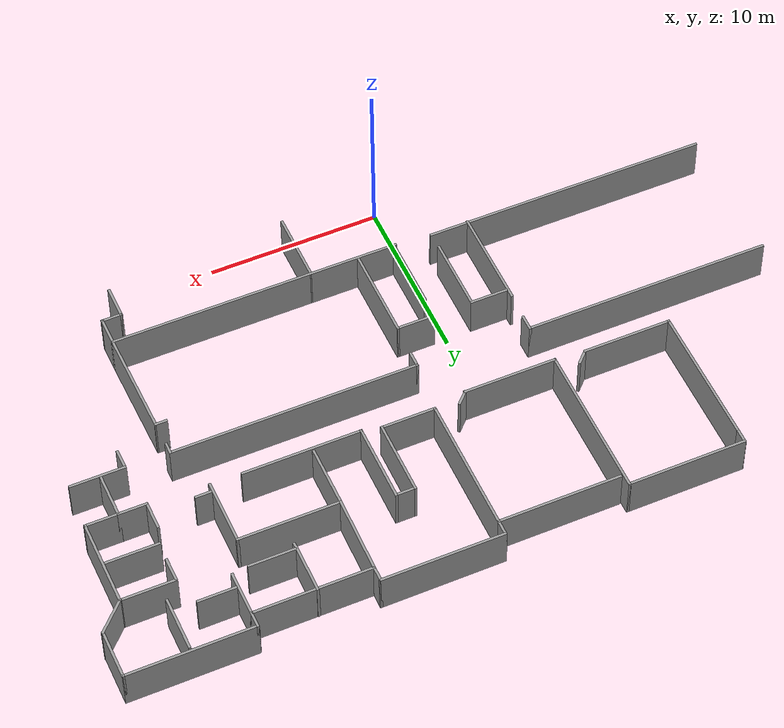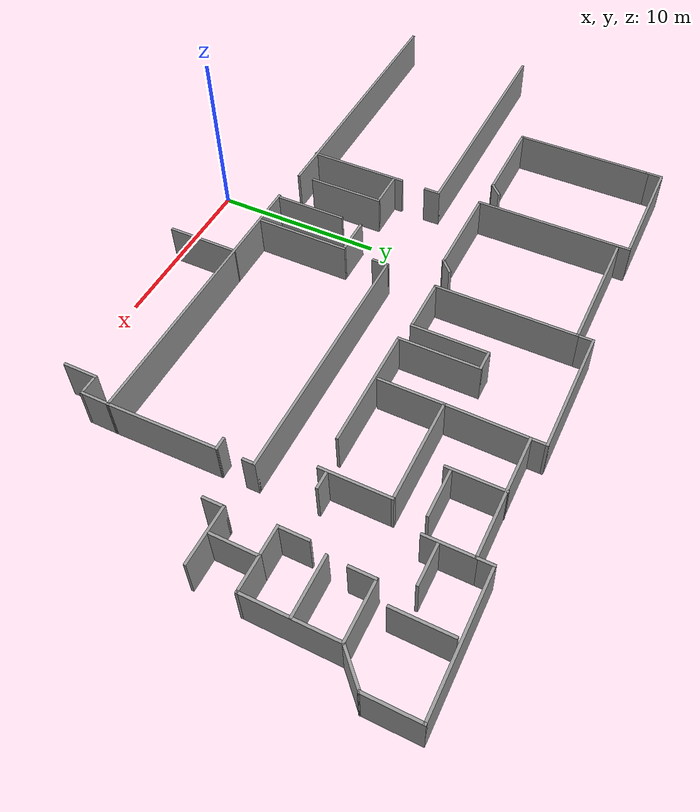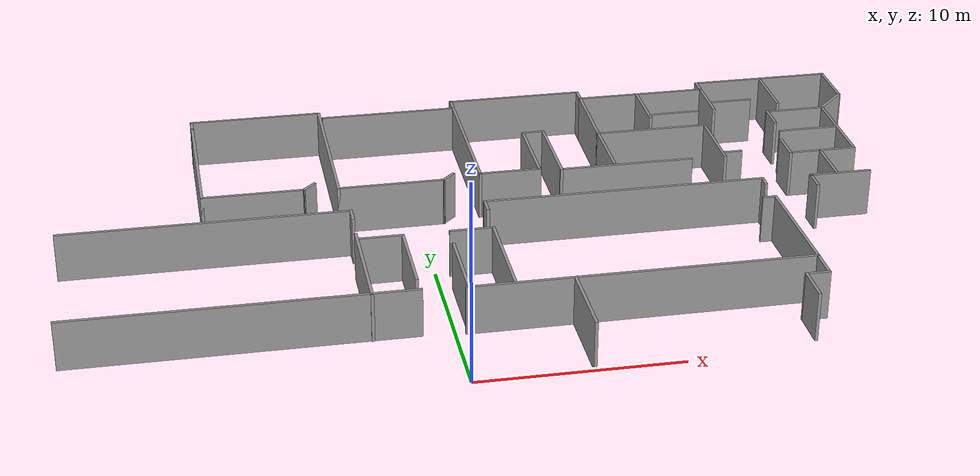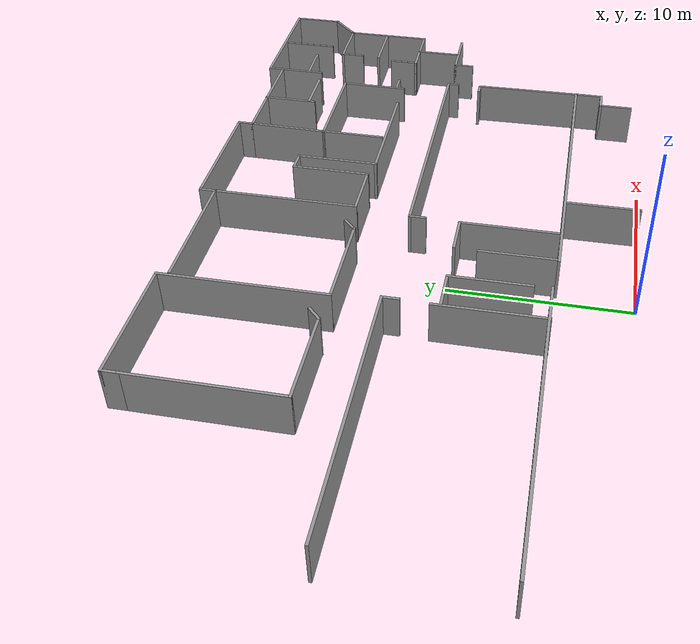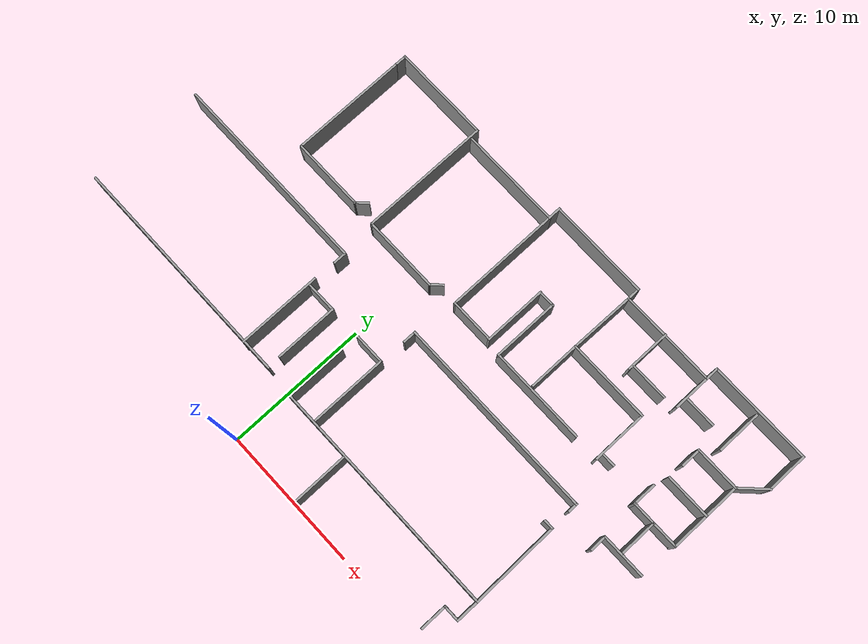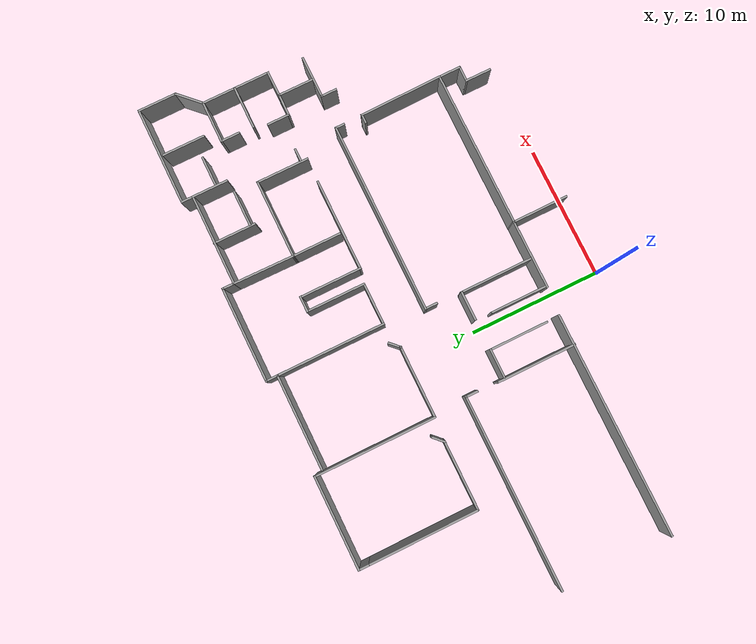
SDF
<sdf version="1.6">
 <model name="Untitled">
  <pose>-0.441057 -0.068194 0 0 -0 0</pose>
  <link name="Wall_342">
   <collision name="Wall_342_Collision">
    <geometry><box><size>1.25 0.15 2.5</size></box></geometry>
    <pose>0 0 1.25 0 -0 0</pose>
   </collision>
   <visual name="Wall_342_Visual">
    <pose>0 0 1.25 0 -0 0</pose>
    <geometry><box><size>1.25 0.15 2.5</size></box></geometry>
    <material>
     <script><uri>file://media/materials/scripts/gazebo.material</uri><name>Gazebo/Grey</name></script>
     <ambient>1 1 1 1</ambient>
    </material>
    <meta><layer>0</layer></meta>
   </visual>
   <pose>20.2503 11.9085 0 0 -0 1.5708</pose>
  </link>
  <link name="Wall_343">
   <collision name="Wall_343_Collision">
    <geometry><box><size>3.25 0.15 2.5</size></box></geometry>
    <pose>0 0 1.25 0 -0 0</pose>
   </collision>
   <visual name="Wall_343_Visual">
    <pose>0 0 1.25 0 -0 0</pose>
    <geometry><box><size>3.25 0.15 2.5</size></box></geometry>
    <material>
     <script><uri>file://media/materials/scripts/gazebo.material</uri><name>Gazebo/Grey</name></script>
     <ambient>1 1 1 1</ambient>
    </material>
    <meta><layer>0</layer></meta>
   </visual>
   <pose>21.8003 12.4585 0 0 -0 0</pose>
  </link>
  <link name="Wall_420">
   <collision name="Wall_420_Collision">
    <geometry><box><size>8.25 0.15 2.5</size></box></geometry>
    <pose>0 0 1.25 0 -0 0</pose>
   </collision>
   <visual name="Wall_420_Visual">
    <pose>0 0 1.25 0 -0 0</pose>
    <geometry><box><size>8.25 0.15 2.5</size></box></geometry>
    <material>
     <script><uri>file://media/materials/scripts/gazebo.material</uri><name>Gazebo/Grey</name></script>
     <ambient>1 1 1 1</ambient>
    </material>
    <meta><layer>0</layer></meta>
   </visual>
   <pose>-10.4728 19.4766 0 0 -0 -1.5708</pose>
  </link>
  <link name="Wall_425">
   <collision name="Wall_425_Collision">
    <geometry><box><size>1 0.15 2.5</size></box></geometry>
    <pose>0 0 1.25 0 -0 0</pose>
   </collision>
   <visual name="Wall_425_Visual">
    <pose>0 0 1.25 0 -0 0</pose>
    <geometry><box><size>1 0.15 2.5</size></box></geometry>
    <material>
     <script><uri>file://media/materials/scripts/gazebo.material</uri><name>Gazebo/Grey</name></script>
     <ambient>1 1 1 1</ambient>
    </material>
    <meta><layer>0</layer></meta>
   </visual>
   <pose>-10.4728 23.9516 0 0 -0 1.5708</pose>
  </link>
  <link name="Wall_426">
   <collision name="Wall_426_Collision">
    <geometry><box><size>7 0.15 2.5</size></box></geometry>
    <pose>0 0 1.25 0 -0 0</pose>
   </collision>
   <visual name="Wall_426_Visual">
    <pose>0 0 1.25 0 -0 0</pose>
    <geometry><box><size>7 0.15 2.5</size></box></geometry>
    <material>
     <script><uri>file://media/materials/scripts/gazebo.material</uri><name>Gazebo/Grey</name></script>
     <ambient>1 1 1 1</ambient>
    </material>
    <meta><layer>0</layer></meta>
   </visual>
   <pose>-7.0478 24.3766 0 0 -0 0</pose>
  </link>
  <link name="Wall_427">
   <collision name="Wall_427_Collision">
    <geometry><box><size>9.25 0.15 2.5</size></box></geometry>
    <pose>0 0 1.25 0 -0 0</pose>
   </collision>
   <visual name="Wall_427_Visual">
    <pose>0 0 1.25 0 -0 0</pose>
    <geometry><box><size>9.25 0.15 2.5</size></box></geometry>
    <material>
     <script><uri>file://media/materials/scripts/gazebo.material</uri><name>Gazebo/Grey</name></script>
     <ambient>1 1 1 1</ambient>
    </material>
    <meta><layer>0</layer></meta>
   </visual>
   <pose>-3.6228 19.8266 0 0 -0 -1.5708</pose>
  </link>
  <link name="Wall_430">
   <collision name="Wall_430_Collision">
    <geometry><box><size>5.25 0.15 2.5</size></box></geometry>
    <pose>0 0 1.25 0 -0 0</pose>
   </collision>
   <visual name="Wall_430_Visual">
    <pose>0 0 1.25 0 -0 0</pose>
    <geometry><box><size>5.25 0.15 2.5</size></box></geometry>
    <material>
     <script><uri>file://media/materials/scripts/gazebo.material</uri><name>Gazebo/Grey</name></script>
     <ambient>1 1 1 1</ambient>
    </material>
    <meta><layer>0</layer></meta>
   </visual>
   <pose>-7.9228 15.4266 0 0 -0 0</pose>
  </link>
  <link name="Wall_431">
   <collision name="Wall_431_Collision">
    <geometry><box><size>1 0.15 2.5</size></box></geometry>
    <pose>0 0 1.25 0 -0 0</pose>
   </collision>
   <visual name="Wall_431_Visual">
    <pose>0 0 1.25 0 -0 0</pose>
    <geometry><box><size>1 0.15 2.5</size></box></geometry>
    <material>
     <script><uri>file://media/materials/scripts/gazebo.material</uri><name>Gazebo/Grey</name></script>
     <ambient>1 1 1 1</ambient>
    </material>
    <meta><layer>0</layer></meta>
   </visual>
   <pose>-5.07228 15.7271 0 0 -0 0.785398</pose>
  </link>
  <link name="Wall_433">
   <collision name="Wall_433_Collision">
    <geometry><box><size>7.25 0.15 2.5</size></box></geometry>
    <pose>0 0 1.25 0 -0 0</pose>
   </collision>
   <visual name="Wall_433_Visual">
    <pose>0 0 1.25 0 -0 0</pose>
    <geometry><box><size>7.25 0.15 2.5</size></box></geometry>
    <material>
     <script><uri>file://media/materials/scripts/gazebo.material</uri><name>Gazebo/Grey</name></script>
     <ambient>1 1 1 1</ambient>
    </material>
    <meta><layer>0</layer></meta>
   </visual>
   <pose>0.133723 23.7353 0 0 -0 0</pose>
  </link>
  <link name="Wall_434">
   <collision name="Wall_434_Collision">
    <geometry><box><size>8.25 0.15 2.5</size></box></geometry>
    <pose>0 0 1.25 0 -0 0</pose>
   </collision>
   <visual name="Wall_434_Visual">
    <pose>0 0 1.25 0 -0 0</pose>
    <geometry><box><size>8.25 0.15 2.5</size></box></geometry>
    <material>
     <script><uri>file://media/materials/scripts/gazebo.material</uri><name>Gazebo/Grey</name></script>
     <ambient>1 1 1 1</ambient>
    </material>
    <meta><layer>0</layer></meta>
   </visual>
   <pose>3.68372 19.6853 0 0 -0 -1.5708</pose>
  </link>
  <link name="Wall_436">
   <collision name="Wall_436_Collision">
    <geometry><box><size>5.5 0.15 2.5</size></box></geometry>
    <pose>0 0 1.25 0 -0 0</pose>
   </collision>
   <visual name="Wall_436_Visual">
    <pose>0 0 1.25 0 -0 0</pose>
    <geometry><box><size>5.5 0.15 2.5</size></box></geometry>
    <material>
     <script><uri>file://media/materials/scripts/gazebo.material</uri><name>Gazebo/Grey</name></script>
     <ambient>1 1 1 1</ambient>
    </material>
    <meta><layer>0</layer></meta>
   </visual>
   <pose>-0.947799 15.2766 0 0 -0 0</pose>
  </link>
  <link name="Wall_437">
   <collision name="Wall_437_Collision">
    <geometry><box><size>1 0.15 2.5</size></box></geometry>
    <pose>0 0 1.25 0 -0 0</pose>
   </collision>
   <visual name="Wall_437_Visual">
    <pose>0 0 1.25 0 -0 0</pose>
    <geometry><box><size>1 0.15 2.5</size></box></geometry>
    <material>
     <script><uri>file://media/materials/scripts/gazebo.material</uri><name>Gazebo/Grey</name></script>
     <ambient>1 1 1 1</ambient>
    </material>
    <meta><layer>0</layer></meta>
   </visual>
   <pose>2.02772 15.5771 0 0 -0 0.785398</pose>
  </link>
  <link name="Wall_441">
   <collision name="Wall_441_Collision">
    <geometry><box><size>1 0.15 2.5</size></box></geometry>
    <pose>0 0 1.25 0 -0 0</pose>
   </collision>
   <visual name="Wall_441_Visual">
    <pose>0 0 1.25 0 -0 0</pose>
    <geometry><box><size>1 0.15 2.5</size></box></geometry>
    <material>
     <script><uri>file://media/materials/scripts/gazebo.material</uri><name>Gazebo/Grey</name></script>
     <ambient>1 1 1 1</ambient>
    </material>
    <meta><layer>0</layer></meta>
   </visual>
   <pose>3.68372 24.1603 0 0 -0 1.5708</pose>
  </link>
  <link name="Wall_442">
   <collision name="Wall_442_Collision">
    <geometry><box><size>7.25 0.15 2.5</size></box></geometry>
    <pose>0 0 1.25 0 -0 0</pose>
   </collision>
   <visual name="Wall_442_Visual">
    <pose>0 0 1.25 0 -0 0</pose>
    <geometry><box><size>7.25 0.15 2.5</size></box></geometry>
    <material>
     <script><uri>file://media/materials/scripts/gazebo.material</uri><name>Gazebo/Grey</name></script>
     <ambient>1 1 1 1</ambient>
    </material>
    <meta><layer>0</layer></meta>
   </visual>
   <pose>7.23372 24.5853 0 0 -0 0</pose>
  </link>
  <link name="Wall_443">
   <collision name="Wall_443_Collision">
    <geometry><box><size>1 0.15 2.5</size></box></geometry>
    <pose>0 0 1.25 0 -0 0</pose>
   </collision>
   <visual name="Wall_443_Visual">
    <pose>0 0 1.25 0 -0 0</pose>
    <geometry><box><size>1 0.15 2.5</size></box></geometry>
    <material>
     <script><uri>file://media/materials/scripts/gazebo.material</uri><name>Gazebo/Grey</name></script>
     <ambient>1 1 1 1</ambient>
    </material>
    <meta><layer>0</layer></meta>
   </visual>
   <pose>10.7837 24.1603 0 0 -0 -1.5708</pose>
  </link>
  <link name="Wall_445">
   <collision name="Wall_445_Collision">
    <geometry><box><size>3.25 0.15 2.5</size></box></geometry>
    <pose>0 0 1.25 0 -0 0</pose>
   </collision>
   <visual name="Wall_445_Visual">
    <pose>0 0 1.25 0 -0 0</pose>
    <geometry><box><size>3.25 0.15 2.5</size></box></geometry>
    <material>
     <script><uri>file://media/materials/scripts/gazebo.material</uri><name>Gazebo/Grey</name></script>
     <ambient>1 1 1 1</ambient>
    </material>
    <meta><layer>0</layer></meta>
   </visual>
   <pose>5.23372 15.6353 0 0 -0 0</pose>
  </link>
  <link name="Wall_446">
   <collision name="Wall_446_Collision">
    <geometry><box><size>4.5 0.15 2.5</size></box></geometry>
    <pose>0 0 1.25 0 -0 0</pose>
   </collision>
   <visual name="Wall_446_Visual">
    <pose>0 0 1.25 0 -0 0</pose>
    <geometry><box><size>4.5 0.15 2.5</size></box></geometry>
    <material>
     <script><uri>file://media/materials/scripts/gazebo.material</uri><name>Gazebo/Grey</name></script>
     <ambient>1 1 1 1</ambient>
    </material>
    <meta><layer>0</layer></meta>
   </visual>
   <pose>6.78372 17.8103 0 0 -0 1.5708</pose>
  </link>
  <link name="Wall_447">
   <collision name="Wall_447_Collision">
    <geometry><box><size>1.25 0.15 2.5</size></box></geometry>
    <pose>0 0 1.25 0 -0 0</pose>
   </collision>
   <visual name="Wall_447_Visual">
    <pose>0 0 1.25 0 -0 0</pose>
    <geometry><box><size>1.25 0.15 2.5</size></box></geometry>
    <material>
     <script><uri>file://media/materials/scripts/gazebo.material</uri><name>Gazebo/Grey</name></script>
     <ambient>1 1 1 1</ambient>
    </material>
    <meta><layer>0</layer></meta>
   </visual>
   <pose>7.33372 19.9853 0 0 -0 0</pose>
  </link>
  <link name="Wall_448">
   <collision name="Wall_448_Collision">
    <geometry><box><size>4.75 0.15 2.5</size></box></geometry>
    <pose>0 0 1.25 0 -0 0</pose>
   </collision>
   <visual name="Wall_448_Visual">
    <pose>0 0 1.25 0 -0 0</pose>
    <geometry><box><size>4.75 0.15 2.5</size></box></geometry>
    <material>
     <script><uri>file://media/materials/scripts/gazebo.material</uri><name>Gazebo/Grey</name></script>
     <ambient>1 1 1 1</ambient>
    </material>
    <meta><layer>0</layer></meta>
   </visual>
   <pose>7.88372 17.6853 0 0 -0 -1.5708</pose>
  </link>
  <link name="Wall_449">
   <collision name="Wall_449_Collision">
    <geometry><box><size>7 0.15 2.5</size></box></geometry>
    <pose>0 0 1.25 0 -0 0</pose>
   </collision>
   <visual name="Wall_449_Visual">
    <pose>0 0 1.25 0 -0 0</pose>
    <geometry><box><size>7 0.15 2.5</size></box></geometry>
    <material>
     <script><uri>file://media/materials/scripts/gazebo.material</uri><name>Gazebo/Grey</name></script>
     <ambient>1 1 1 1</ambient>
    </material>
    <meta><layer>0</layer></meta>
   </visual>
   <pose>11.3087 15.3853 0 0 -0 0</pose>
  </link>
  <link name="Wall_451">
   <collision name="Wall_451_Collision">
    <geometry><box><size>7 0.15 2.5</size></box></geometry>
    <pose>0 0 1.25 0 -0 0</pose>
   </collision>
   <visual name="Wall_451_Visual">
    <pose>0 0 1.25 0 -0 0</pose>
    <geometry><box><size>7 0.15 2.5</size></box></geometry>
    <material>
     <script><uri>file://media/materials/scripts/gazebo.material</uri><name>Gazebo/Grey</name></script>
     <ambient>1 1 1 1</ambient>
    </material>
    <meta><layer>0</layer></meta>
   </visual>
   <pose>14.2087 23.7353 0 0 -0 0</pose>
  </link>
  <link name="Wall_452">
   <collision name="Wall_452_Collision">
    <geometry><box><size>1 0.15 2.5</size></box></geometry>
    <pose>0 0 1.25 0 -0 0</pose>
   </collision>
   <visual name="Wall_452_Visual">
    <pose>0 0 1.25 0 -0 0</pose>
    <geometry><box><size>1 0.15 2.5</size></box></geometry>
    <material>
     <script><uri>file://media/materials/scripts/gazebo.material</uri><name>Gazebo/Grey</name></script>
     <ambient>1 1 1 1</ambient>
    </material>
    <meta><layer>0</layer></meta>
   </visual>
   <pose>17.6337 24.1603 0 0 -0 1.5708</pose>
  </link>
  <link name="Wall_453">
   <collision name="Wall_453_Collision">
    <geometry><box><size>7.5 0.15 2.5</size></box></geometry>
    <pose>0 0 1.25 0 -0 0</pose>
   </collision>
   <visual name="Wall_453_Visual">
    <pose>0 0 1.25 0 -0 0</pose>
    <geometry><box><size>7.5 0.15 2.5</size></box></geometry>
    <material>
     <script><uri>file://media/materials/scripts/gazebo.material</uri><name>Gazebo/Grey</name></script>
     <ambient>1 1 1 1</ambient>
    </material>
    <meta><layer>0</layer></meta>
   </visual>
   <pose>21.3087 24.5853 0 0 -0 0</pose>
  </link>
  <link name="Wall_454">
   <collision name="Wall_454_Collision">
    <geometry><box><size>3 0.15 2.5</size></box></geometry>
    <pose>0 0 1.25 0 -0 0</pose>
   </collision>
   <visual name="Wall_454_Visual">
    <pose>0 0 1.25 0 -0 0</pose>
    <geometry><box><size>3 0.15 2.5</size></box></geometry>
    <material>
     <script><uri>file://media/materials/scripts/gazebo.material</uri><name>Gazebo/Grey</name></script>
     <ambient>1 1 1 1</ambient>
    </material>
    <meta><layer>0</layer></meta>
   </visual>
   <pose>24.9837 23.1603 0 0 -0 -1.5708</pose>
  </link>
  <link name="Wall_455">
   <collision name="Wall_455_Collision">
    <geometry><box><size>2.25 0.15 2.5</size></box></geometry>
    <pose>0 0 1.25 0 -0 0</pose>
   </collision>
   <visual name="Wall_455_Visual">
    <pose>0 0 1.25 0 -0 0</pose>
    <geometry><box><size>2.25 0.15 2.5</size></box></geometry>
    <material>
     <script><uri>file://media/materials/scripts/gazebo.material</uri><name>Gazebo/Grey</name></script>
     <ambient>1 1 1 1</ambient>
    </material>
    <meta><layer>0</layer></meta>
   </visual>
   <pose>24.2413 20.9928 0 0 -0 -2.35619</pose>
  </link>
  <link name="Wall_456">
   <collision name="Wall_456_Collision">
    <geometry><box><size>5.25 0.15 2.5</size></box></geometry>
    <pose>0 0 1.25 0 -0 0</pose>
   </collision>
   <visual name="Wall_456_Visual">
    <pose>0 0 1.25 0 -0 0</pose>
    <geometry><box><size>5.25 0.15 2.5</size></box></geometry>
    <material>
     <script><uri>file://media/materials/scripts/gazebo.material</uri><name>Gazebo/Grey</name></script>
     <ambient>1 1 1 1</ambient>
    </material>
    <meta><layer>0</layer></meta>
   </visual>
   <pose>23.4988 17.7003 0 0 -0 -1.5708</pose>
  </link>
  <link name="Wall_457">
   <collision name="Wall_457_Collision">
    <geometry><box><size>2 0.15 2.5</size></box></geometry>
    <pose>0 0 1.25 0 -0 0</pose>
   </collision>
   <visual name="Wall_457_Visual">
    <pose>0 0 1.25 0 -0 0</pose>
    <geometry><box><size>2 0.15 2.5</size></box></geometry>
    <material>
     <script><uri>file://media/materials/scripts/gazebo.material</uri><name>Gazebo/Grey</name></script>
     <ambient>1 1 1 1</ambient>
    </material>
    <meta><layer>0</layer></meta>
   </visual>
   <pose>22.5738 15.1503 0 0 -0 3.14159</pose>
  </link>
  <link name="Wall_458">
   <collision name="Wall_458_Collision">
    <geometry><box><size>2.75 0.15 2.5</size></box></geometry>
    <pose>0 0 1.25 0 -0 0</pose>
   </collision>
   <visual name="Wall_458_Visual">
    <pose>0 0 1.25 0 -0 0</pose>
    <geometry><box><size>2.75 0.15 2.5</size></box></geometry>
    <material>
     <script><uri>file://media/materials/scripts/gazebo.material</uri><name>Gazebo/Grey</name></script>
     <ambient>1 1 1 1</ambient>
    </material>
    <meta><layer>0</layer></meta>
   </visual>
   <pose>21.6488 13.8503 0 0 -0 -1.5708</pose>
  </link>
  <link name="Wall_461">
   <collision name="Wall_461_Collision">
    <geometry><box><size>4 0.15 2.5</size></box></geometry>
    <pose>0 0 1.25 0 -0 0</pose>
   </collision>
   <visual name="Wall_461_Visual">
    <pose>0 0 1.25 0 -0 0</pose>
    <geometry><box><size>4 0.15 2.5</size></box></geometry>
    <material>
     <script><uri>file://media/materials/scripts/gazebo.material</uri><name>Gazebo/Grey</name></script>
     <ambient>1 1 1 1</ambient>
    </material>
    <meta><layer>0</layer></meta>
   </visual>
   <pose>16.5694 17.2825 0 0 -0 1.5708</pose>
  </link>
  <link name="Wall_462">
   <collision name="Wall_462_Collision">
    <geometry><box><size>6 0.15 2.5</size></box></geometry>
    <pose>0 0 1.25 0 -0 0</pose>
   </collision>
   <visual name="Wall_462_Visual">
    <pose>0 0 1.25 0 -0 0</pose>
    <geometry><box><size>6 0.15 2.5</size></box></geometry>
    <material>
     <script><uri>file://media/materials/scripts/gazebo.material</uri><name>Gazebo/Grey</name></script>
     <ambient>1 1 1 1</ambient>
    </material>
    <meta><layer>0</layer></meta>
   </visual>
   <pose>13.6444 19.2075 0 0 -0 3.14159</pose>
  </link>
  <link name="Wall_464">
   <collision name="Wall_464_Collision">
    <geometry><box><size>3.75 0.15 2.5</size></box></geometry>
    <pose>0 0 1.25 0 -0 0</pose>
   </collision>
   <visual name="Wall_464_Visual">
    <pose>0 0 1.25 0 -0 0</pose>
    <geometry><box><size>3.75 0.15 2.5</size></box></geometry>
    <material>
     <script><uri>file://media/materials/scripts/gazebo.material</uri><name>Gazebo/Grey</name></script>
     <ambient>1 1 1 1</ambient>
    </material>
    <meta><layer>0</layer></meta>
   </visual>
   <pose>10.7194 17.4075 0 0 -0 -1.5708</pose>
  </link>
  <link name="Wall_466">
   <collision name="Wall_466_Collision">
    <geometry><box><size>4.67825 0.15 2.5</size></box></geometry>
    <pose>0 0 1.25 0 -0 0</pose>
   </collision>
   <visual name="Wall_466_Visual">
    <pose>0 0 1.25 0 -0 0</pose>
    <geometry><box><size>4.67825 0.15 2.5</size></box></geometry>
    <material>
     <script><uri>file://media/materials/scripts/gazebo.material</uri><name>Gazebo/Grey</name></script>
     <ambient>1 1 1 1</ambient>
    </material>
    <meta><layer>0</layer></meta>
   </visual>
   <pose>10.7516 21.4714 0 0 -0 1.5566</pose>
  </link>
  <link name="Wall_468">
   <collision name="Wall_468_Collision">
    <geometry><box><size>3.25 0.15 2.5</size></box></geometry>
    <pose>0 0 1.25 0 -0 0</pose>
   </collision>
   <visual name="Wall_468_Visual">
    <pose>0 0 1.25 0 -0 0</pose>
    <geometry><box><size>3.25 0.15 2.5</size></box></geometry>
    <material>
     <script><uri>file://media/materials/scripts/gazebo.material</uri><name>Gazebo/Grey</name></script>
     <ambient>1 1 1 1</ambient>
    </material>
    <meta><layer>0</layer></meta>
   </visual>
   <pose>13.9683 22.2158 0 0 -0 -1.5708</pose>
  </link>
  <link name="Wall_470">
   <collision name="Wall_470_Collision">
    <geometry><box><size>2.75 0.15 2.5</size></box></geometry>
    <pose>0 0 1.25 0 -0 0</pose>
   </collision>
   <visual name="Wall_470_Visual">
    <pose>0 0 1.25 0 -0 0</pose>
    <geometry><box><size>2.75 0.15 2.5</size></box></geometry>
    <material>
     <script><uri>file://media/materials/scripts/gazebo.material</uri><name>Gazebo/Grey</name></script>
     <ambient>1 1 1 1</ambient>
    </material>
    <meta><layer>0</layer></meta>
   </visual>
   <pose>17.6337 22.4353 0 0 -0 -1.5708</pose>
  </link>
  <link name="Wall_472">
   <collision name="Wall_472_Collision">
    <geometry><box><size>2.75 0.15 2.5</size></box></geometry>
    <pose>0 0 1.25 0 -0 0</pose>
   </collision>
   <visual name="Wall_472_Visual">
    <pose>0 0 1.25 0 -0 0</pose>
    <geometry><box><size>2.75 0.15 2.5</size></box></geometry>
    <material>
     <script><uri>file://media/materials/scripts/gazebo.material</uri><name>Gazebo/Grey</name></script>
     <ambient>1 1 1 1</ambient>
    </material>
    <meta><layer>0</layer></meta>
   </visual>
   <pose>15.359 20.9832 0 0 -0 0</pose>
  </link>
  <link name="Wall_474">
   <collision name="Wall_474_Collision">
    <geometry><box><size>2.25 0.15 2.5</size></box></geometry>
    <pose>0 0 1.25 0 -0 0</pose>
   </collision>
   <visual name="Wall_474_Visual">
    <pose>0 0 1.25 0 -0 0</pose>
    <geometry><box><size>2.25 0.15 2.5</size></box></geometry>
    <material>
     <script><uri>file://media/materials/scripts/gazebo.material</uri><name>Gazebo/Grey</name></script>
     <ambient>1 1 1 1</ambient>
    </material>
    <meta><layer>0</layer></meta>
   </visual>
   <pose>18.8293 21.951 0 0 -0 0</pose>
  </link>
  <link name="Wall_476">
   <collision name="Wall_476_Collision">
    <geometry><box><size>3.25 0.15 2.5</size></box></geometry>
    <pose>0 0 1.25 0 -0 0</pose>
   </collision>
   <visual name="Wall_476_Visual">
    <pose>0 0 1.25 0 -0 0</pose>
    <geometry><box><size>3.25 0.15 2.5</size></box></geometry>
    <material>
     <script><uri>file://media/materials/scripts/gazebo.material</uri><name>Gazebo/Grey</name></script>
     <ambient>1 1 1 1</ambient>
    </material>
    <meta><layer>0</layer></meta>
   </visual>
   <pose>21.2878 22.7905 0 0 -0 -1.5708</pose>
  </link>
  <link name="Wall_478">
   <collision name="Wall_478_Collision">
    <geometry><box><size>3.25 0.15 2.5</size></box></geometry>
    <pose>0 0 1.25 0 -0 0</pose>
   </collision>
   <visual name="Wall_478_Visual">
    <pose>0 0 1.25 0 -0 0</pose>
    <geometry><box><size>3.25 0.15 2.5</size></box></geometry>
    <material>
     <script><uri>file://media/materials/scripts/gazebo.material</uri><name>Gazebo/Grey</name></script>
     <ambient>1 1 1 1</ambient>
    </material>
    <meta><layer>0</layer></meta>
   </visual>
   <pose>21.9488 20.2503 0 0 -0 3.14159</pose>
  </link>
  <link name="Wall_479">
   <collision name="Wall_479_Collision">
    <geometry><box><size>1.5 0.15 2.5</size></box></geometry>
    <pose>0 0 1.25 0 -0 0</pose>
   </collision>
   <visual name="Wall_479_Visual">
    <pose>0 0 1.25 0 -0 0</pose>
    <geometry><box><size>1.5 0.15 2.5</size></box></geometry>
    <material>
     <script><uri>file://media/materials/scripts/gazebo.material</uri><name>Gazebo/Grey</name></script>
     <ambient>1 1 1 1</ambient>
    </material>
    <meta><layer>0</layer></meta>
   </visual>
   <pose>20.3988 19.5753 0 0 -0 -1.5708</pose>
  </link>
  <link name="Wall_481">
   <collision name="Wall_481_Collision">
    <geometry><box><size>1.75 0.15 2.5</size></box></geometry>
    <pose>0 0 1.25 0 -0 0</pose>
   </collision>
   <visual name="Wall_481_Visual">
    <pose>0 0 1.25 0 -0 0</pose>
    <geometry><box><size>1.75 0.15 2.5</size></box></geometry>
    <material>
     <script><uri>file://media/materials/scripts/gazebo.material</uri><name>Gazebo/Grey</name></script>
     <ambient>1 1 1 1</ambient>
    </material>
    <meta><layer>0</layer></meta>
   </visual>
   <pose>20.8488 15.1503 0 0 -0 3.14159</pose>
  </link>
  <link name="Wall_482">
   <collision name="Wall_482_Collision">
    <geometry><box><size>1.75 0.15 2.5</size></box></geometry>
    <pose>0 0 1.25 0 -0 0</pose>
   </collision>
   <visual name="Wall_482_Visual">
    <pose>0 0 1.25 0 -0 0</pose>
    <geometry><box><size>1.75 0.15 2.5</size></box></geometry>
    <material>
     <script><uri>file://media/materials/scripts/gazebo.material</uri><name>Gazebo/Grey</name></script>
     <ambient>1 1 1 1</ambient>
    </material>
    <meta><layer>0</layer></meta>
   </visual>
   <pose>20.0488 15.9503 0 0 -0 1.5708</pose>
  </link>
  <link name="Wall_484">
   <collision name="Wall_484_Collision">
    <geometry><box><size>3.25 0.15 2.5</size></box></geometry>
    <pose>0 0 1.25 0 -0 0</pose>
   </collision>
   <visual name="Wall_484_Visual">
    <pose>0 0 1.25 0 -0 0</pose>
    <geometry><box><size>3.25 0.15 2.5</size></box></geometry>
    <material>
     <script><uri>file://media/materials/scripts/gazebo.material</uri><name>Gazebo/Grey</name></script>
     <ambient>1 1 1 1</ambient>
    </material>
    <meta><layer>0</layer></meta>
   </visual>
   <pose>21.9155 17.7771 0 0 -0 3.14159</pose>
  </link>
  <link name="Wall_486">
   <collision name="Wall_486_Collision">
    <geometry><box><size>1 0.15 2.5</size></box></geometry>
    <pose>0 0 1.25 0 -0 0</pose>
   </collision>
   <visual name="Wall_486_Visual">
    <pose>0 0 1.25 0 -0 0</pose>
    <geometry><box><size>1 0.15 2.5</size></box></geometry>
    <material>
     <script><uri>file://media/materials/scripts/gazebo.material</uri><name>Gazebo/Grey</name></script>
     <ambient>1 1 1 1</ambient>
    </material>
    <meta><layer>0</layer></meta>
   </visual>
   <pose>17.1154 15.8112 0 0 -0 0</pose>
  </link>
  <link name="Wall_505">
   <collision name="Wall_505_Collision">
    <geometry><box><size>16.75 0.15 2.5</size></box></geometry>
    <pose>0 0 1.25 0 -0 0</pose>
   </collision>
   <visual name="Wall_505_Visual">
    <pose>0 0 1.25 0 -0 0</pose>
    <geometry><box><size>16.75 0.15 2.5</size></box></geometry>
    <material>
     <script><uri>file://media/materials/scripts/gazebo.material</uri><name>Gazebo/Grey</name></script>
     <ambient>1 1 1 1</ambient>
    </material>
    <meta><layer>0</layer></meta>
   </visual>
   <pose>-9.42925 4.469 0 0 -0 0</pose>
  </link>
  <link name="Wall_522">
   <collision name="Wall_522_Collision">
    <geometry><box><size>17 0.15 2.5</size></box></geometry>
    <pose>0 0 1.25 0 -0 0</pose>
   </collision>
   <visual name="Wall_522_Visual">
    <pose>0 0 1.25 0 -0 0</pose>
    <geometry><box><size>17 0.15 2.5</size></box></geometry>
    <material>
     <script><uri>file://media/materials/scripts/gazebo.material</uri><name>Gazebo/Grey</name></script>
     <ambient>1 1 1 1</ambient>
    </material>
    <meta><layer>0</layer></meta>
   </visual>
   <pose>9.41786 4.28752 0 0 -0 0</pose>
  </link>
  <link name="Wall_523">
   <collision name="Wall_523_Collision">
    <geometry><box><size>1.75 0.15 2.5</size></box></geometry>
    <pose>0 0 1.25 0 -0 0</pose>
   </collision>
   <visual name="Wall_523_Visual">
    <pose>0 0 1.25 0 -0 0</pose>
    <geometry><box><size>1.75 0.15 2.5</size></box></geometry>
    <material>
     <script><uri>file://media/materials/scripts/gazebo.material</uri><name>Gazebo/Grey</name></script>
     <ambient>1 1 1 1</ambient>
    </material>
    <meta><layer>0</layer></meta>
   </visual>
   <pose>17.8429 3.48753 0 0 -0 -1.5708</pose>
  </link>
  <link name="Wall_524">
   <collision name="Wall_524_Collision">
    <geometry><box><size>1.25 0.15 2.5</size></box></geometry>
    <pose>0 0 1.25 0 -0 0</pose>
   </collision>
   <visual name="Wall_524_Visual">
    <pose>0 0 1.25 0 -0 0</pose>
    <geometry><box><size>1.25 0.15 2.5</size></box></geometry>
    <material>
     <script><uri>file://media/materials/scripts/gazebo.material</uri><name>Gazebo/Grey</name></script>
     <ambient>1 1 1 1</ambient>
    </material>
    <meta><layer>0</layer></meta>
   </visual>
   <pose>17.2929 2.68752 0 0 -0 3.14159</pose>
  </link>
  <link name="Wall_525">
   <collision name="Wall_525_Collision">
    <geometry><box><size>2 0.15 2.5</size></box></geometry>
    <pose>0 0 1.25 0 -0 0</pose>
   </collision>
   <visual name="Wall_525_Visual">
    <pose>0 0 1.25 0 -0 0</pose>
    <geometry><box><size>2 0.15 2.5</size></box></geometry>
    <material>
     <script><uri>file://media/materials/scripts/gazebo.material</uri><name>Gazebo/Grey</name></script>
     <ambient>1 1 1 1</ambient>
    </material>
    <meta><layer>0</layer></meta>
   </visual>
   <pose>16.7429 1.76252 0 0 -0 -1.5708</pose>
  </link>
  <link name="Wall_527">
   <collision name="Wall_527_Collision">
    <geometry><box><size>4.26344 0.15 2.5</size></box></geometry>
    <pose>0 0 1.25 0 -0 0</pose>
   </collision>
   <visual name="Wall_527_Visual">
    <pose>0 0 1.25 0 -0 0</pose>
    <geometry><box><size>4.26344 0.15 2.5</size></box></geometry>
    <material>
     <script><uri>file://media/materials/scripts/gazebo.material</uri><name>Gazebo/Grey</name></script>
     <ambient>1 1 1 1</ambient>
    </material>
    <meta><layer>0</layer></meta>
   </visual>
   <pose>6.10973 2.23081 0 0 -0 -1.5682</pose>
  </link>
  <link name="Wall_535">
   <collision name="Wall_535_Collision">
    <geometry><box><size>14.5 0.15 2.5</size></box></geometry>
    <pose>0 0 1.25 0 -0 0</pose>
   </collision>
   <visual name="Wall_535_Visual">
    <pose>0 0 1.25 0 -0 0</pose>
    <geometry><box><size>14.5 0.15 2.5</size></box></geometry>
    <material>
     <script><uri>file://media/materials/scripts/gazebo.material</uri><name>Gazebo/Grey</name></script>
     <ambient>1 1 1 1</ambient>
    </material>
    <meta><layer>0</layer></meta>
   </visual>
   <pose>-10.4938 12.7563 0 0 -0 0</pose>
  </link>
  <link name="Wall_537">
   <collision name="Wall_537_Collision">
    <geometry><box><size>6 0.15 2.5</size></box></geometry>
    <pose>0 0 1.25 0 -0 0</pose>
   </collision>
   <visual name="Wall_537_Visual">
    <pose>0 0 1.25 0 -0 0</pose>
    <geometry><box><size>6 0.15 2.5</size></box></geometry>
    <material>
     <script><uri>file://media/materials/scripts/gazebo.material</uri><name>Gazebo/Grey</name></script>
     <ambient>1 1 1 1</ambient>
    </material>
    <meta><layer>0</layer></meta>
   </visual>
   <pose>-3.39277 7.35118 0 0 -0 -1.5708</pose>
  </link>
  <link name="Wall_539">
   <collision name="Wall_539_Collision">
    <geometry><box><size>2.25 0.15 2.5</size></box></geometry>
    <pose>0 0 1.25 0 -0 0</pose>
   </collision>
   <visual name="Wall_539_Visual">
    <pose>0 0 1.25 0 -0 0</pose>
    <geometry><box><size>2.25 0.15 2.5</size></box></geometry>
    <material>
     <script><uri>file://media/materials/scripts/gazebo.material</uri><name>Gazebo/Grey</name></script>
     <ambient>1 1 1 1</ambient>
    </material>
    <meta><layer>0</layer></meta>
   </visual>
   <pose>-2.22179 9.79225 0 0 -0 0</pose>
  </link>
  <link name="Wall_540">
   <collision name="Wall_540_Collision">
    <geometry><box><size>4.5 0.15 2.5</size></box></geometry>
    <pose>0 0 1.25 0 -0 0</pose>
   </collision>
   <visual name="Wall_540_Visual">
    <pose>0 0 1.25 0 -0 0</pose>
    <geometry><box><size>4.5 0.15 2.5</size></box></geometry>
    <material>
     <script><uri>file://media/materials/scripts/gazebo.material</uri><name>Gazebo/Grey</name></script>
     <ambient>1 1 1 1</ambient>
    </material>
    <meta><layer>0</layer></meta>
   </visual>
   <pose>-1.17179 7.61725 0 0 -0 -1.5708</pose>
  </link>
  <link name="Wall_542">
   <collision name="Wall_542_Collision">
    <geometry><box><size>2.25 0.15 2.5</size></box></geometry>
    <pose>0 0 1.25 0 -0 0</pose>
   </collision>
   <visual name="Wall_542_Visual">
    <pose>0 0 1.25 0 -0 0</pose>
    <geometry><box><size>2.25 0.15 2.5</size></box></geometry>
    <material>
     <script><uri>file://media/materials/scripts/gazebo.material</uri><name>Gazebo/Grey</name></script>
     <ambient>1 1 1 1</ambient>
    </material>
    <meta><layer>0</layer></meta>
   </visual>
   <pose>2.22434 9.79225 0 0 -0 0</pose>
  </link>
  <link name="Wall_543">
   <collision name="Wall_543_Collision">
    <geometry><box><size>5.5 0.15 2.5</size></box></geometry>
    <pose>0 0 1.25 0 -0 0</pose>
   </collision>
   <visual name="Wall_543_Visual">
    <pose>0 0 1.25 0 -0 0</pose>
    <geometry><box><size>5.5 0.15 2.5</size></box></geometry>
    <material>
     <script><uri>file://media/materials/scripts/gazebo.material</uri><name>Gazebo/Grey</name></script>
     <ambient>1 1 1 1</ambient>
    </material>
    <meta><layer>0</layer></meta>
   </visual>
   <pose>3.27434 7.11725 0 0 -0 -1.5708</pose>
  </link>
  <link name="Wall_545">
   <collision name="Wall_545_Collision">
    <geometry><box><size>4.25 0.15 2.5</size></box></geometry>
    <pose>0 0 1.25 0 -0 0</pose>
   </collision>
   <visual name="Wall_545_Visual">
    <pose>0 0 1.25 0 -0 0</pose>
    <geometry><box><size>4.25 0.15 2.5</size></box></geometry>
    <material>
     <script><uri>file://media/materials/scripts/gazebo.material</uri><name>Gazebo/Grey</name></script>
     <ambient>1 1 1 1</ambient>
    </material>
    <meta><layer>0</layer></meta>
   </visual>
   <pose>1.0836 6.44168 0 0 -0 -1.5708</pose>
  </link>
  <link name="Wall_549">
   <collision name="Wall_549_Collision">
    <geometry><box><size>1 0.15 2.5</size></box></geometry>
    <pose>0 0 1.25 0 -0 0</pose>
   </collision>
   <visual name="Wall_549_Visual">
    <pose>0 0 1.25 0 -0 0</pose>
    <geometry><box><size>1 0.15 2.5</size></box></geometry>
    <material>
     <script><uri>file://media/materials/scripts/gazebo.material</uri><name>Gazebo/Grey</name></script>
     <ambient>1 1 1 1</ambient>
    </material>
    <meta><layer>0</layer></meta>
   </visual>
   <pose>-3.31876 12.3313 0 0 -0 -1.5708</pose>
  </link>
  <link name="Wall_551">
   <collision name="Wall_551_Collision">
    <geometry><box><size>1 0.15 2.5</size></box></geometry>
    <pose>0 0 1.25 0 -0 0</pose>
   </collision>
   <visual name="Wall_551_Visual">
    <pose>0 0 1.25 0 -0 0</pose>
    <geometry><box><size>1 0.15 2.5</size></box></geometry>
    <material>
     <script><uri>file://media/materials/scripts/gazebo.material</uri><name>Gazebo/Grey</name></script>
     <ambient>1 1 1 1</ambient>
    </material>
    <meta><layer>0</layer></meta>
   </visual>
   <pose>3.35203 12.1227 0 0 -0 1.5708</pose>
  </link>
  <link name="Wall_552">
   <collision name="Wall_552_Collision">
    <geometry><box><size>14.5 0.15 2.5</size></box></geometry>
    <pose>0 0 1.25 0 -0 0</pose>
   </collision>
   <visual name="Wall_552_Visual">
    <pose>0 0 1.25 0 -0 0</pose>
    <geometry><box><size>14.5 0.15 2.5</size></box></geometry>
    <material>
     <script><uri>file://media/materials/scripts/gazebo.material</uri><name>Gazebo/Grey</name></script>
     <ambient>1 1 1 1</ambient>
    </material>
    <meta><layer>0</layer></meta>
   </visual>
   <pose>10.527 12.5477 0 0 -0 0</pose>
  </link>
  <link name="Wall_553">
   <collision name="Wall_553_Collision">
    <geometry><box><size>0.75 0.15 2.5</size></box></geometry>
    <pose>0 0 1.25 0 -0 0</pose>
   </collision>
   <visual name="Wall_553_Visual">
    <pose>0 0 1.25 0 -0 0</pose>
    <geometry><box><size>0.75 0.15 2.5</size></box></geometry>
    <material>
     <script><uri>file://media/materials/scripts/gazebo.material</uri><name>Gazebo/Grey</name></script>
     <ambient>1 1 1 1</ambient>
    </material>
    <meta><layer>0</layer></meta>
   </visual>
   <pose>17.702 12.2477 0 0 -0 -1.5708</pose>
  </link>
  <link name="Wall_555">
   <collision name="Wall_555_Collision">
    <geometry><box><size>0.75 0.15 2.5</size></box></geometry>
    <pose>0 0 1.25 0 -0 0</pose>
   </collision>
   <visual name="Wall_555_Visual">
    <pose>0 0 1.25 0 -0 0</pose>
    <geometry><box><size>0.75 0.15 2.5</size></box></geometry>
    <material>
     <script><uri>file://media/materials/scripts/gazebo.material</uri><name>Gazebo/Grey</name></script>
     <ambient>1 1 1 1</ambient>
    </material>
    <meta><layer>0</layer></meta>
   </visual>
   <pose>17.4441 10.4879 0 0 -0 0</pose>
  </link>
  <link name="Wall_556">
   <collision name="Wall_556_Collision">
    <geometry><box><size>6.35116 0.15 2.5</size></box></geometry>
    <pose>0 0 1.25 0 -0 0</pose>
   </collision>
   <visual name="Wall_556_Visual">
    <pose>0 0 1.25 0 -0 0</pose>
    <geometry><box><size>6.35116 0.15 2.5</size></box></geometry>
    <material>
     <script><uri>file://media/materials/scripts/gazebo.material</uri><name>Gazebo/Grey</name></script>
     <ambient>1 1 1 1</ambient>
    </material>
    <meta><layer>0</layer></meta>
   </visual>
   <pose>17.7935 7.38771 0 0 -0 -1.55487</pose>
  </link>
  <static>1</static>
 </model>
</sdf>
